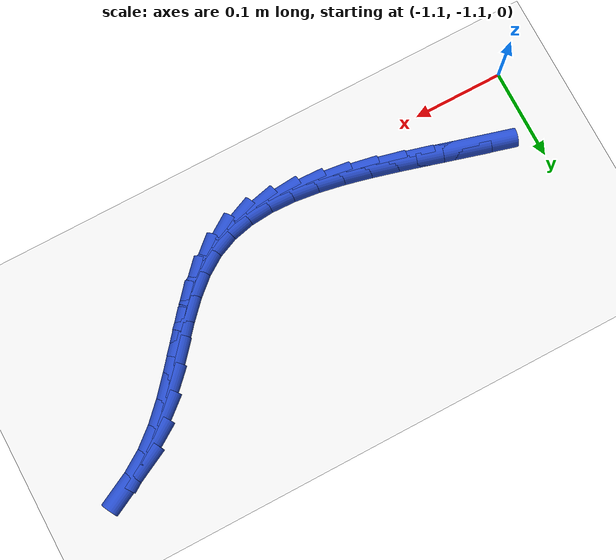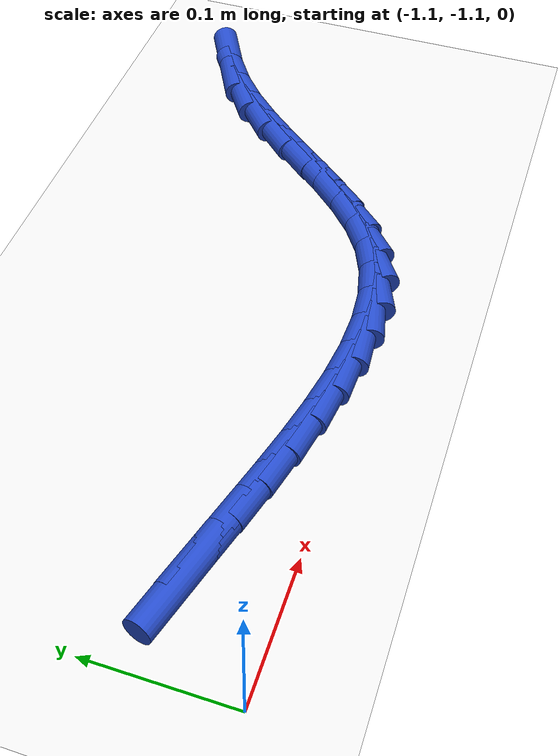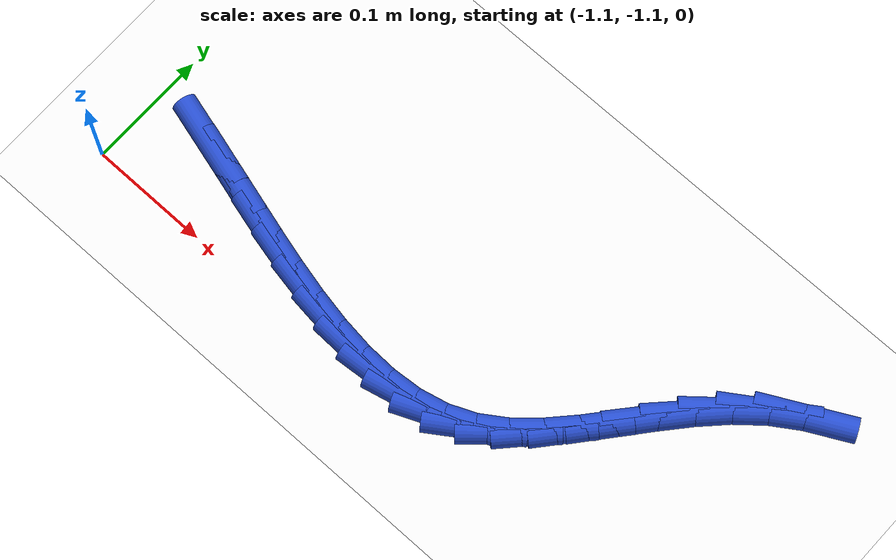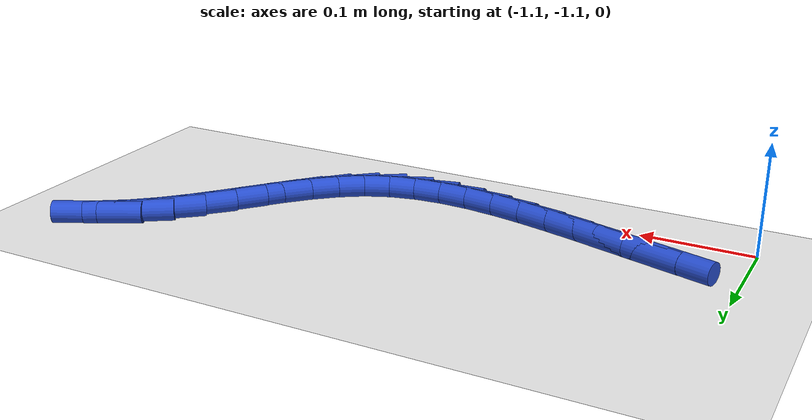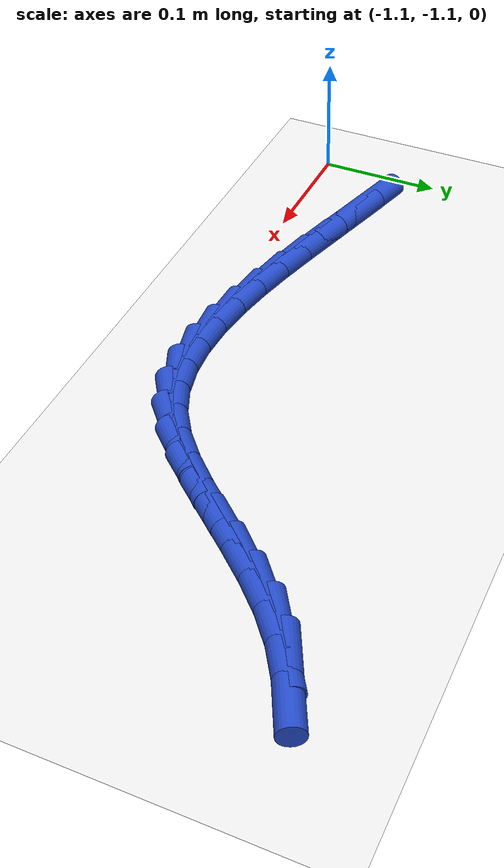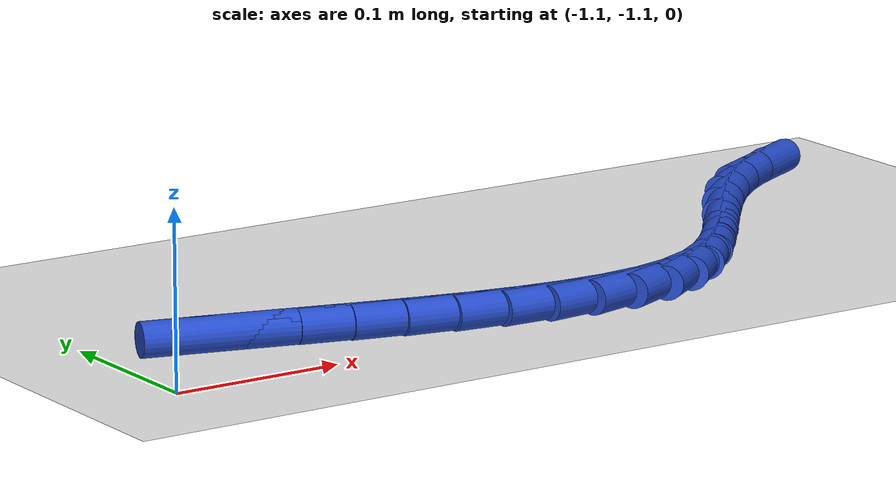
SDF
<sdf version="1.6">
 <world name="default">
  <model name="ground_plane">
   <static>1</static>
   <link name="link">
    <collision name="collision">
     <geometry><plane><normal>0 0 1</normal><size>100 100</size></plane></geometry>
     <surface><friction><ode><mu>100</mu><mu2>50</mu2></ode></friction></surface>
    </collision>
    <visual name="visual">
     <cast_shadows>0</cast_shadows>
     <geometry><plane><normal>0 0 1</normal><size>100 100</size></plane></geometry>
     <material>
      <script><uri>file://media/materials/scripts/gazebo.material</uri><name>Gazebo/WhiteGlow</name></script>
     </material>
    </visual>
   </link>
  </model>
  <model name="line">
   <link name="link_188">
    <pose>-1.041541924193494 -1.0399817547111048 0.01 0 1.57 -0.2705657940973723</pose>
    <collision name="collision">
     <geometry><cylinder><radius>0.01</radius><length>0.08</length></cylinder></geometry>
    </collision>
    <visual name="visual">
     <material>
      <script><name>Gazebo/Blue</name><uri>file://media/materials/scripts/gazebo.material</uri></script>
     </material>
     <geometry><cylinder><radius>0.01</radius><length>0.08</length></cylinder></geometry>
    </visual>
   </link>
   <link name="link_189">
    <pose>-1.0139028569669695 -1.047647929888889 0.01 0 1.57 -0.2769690448395777</pose>
    <collision name="collision">
     <geometry><cylinder><radius>0.01</radius><length>0.08</length></cylinder></geometry>
    </collision>
    <visual name="visual">
     <material>
      <script><name>Gazebo/Blue</name><uri>file://media/materials/scripts/gazebo.material</uri></script>
     </material>
     <geometry><cylinder><radius>0.01</radius><length>0.08</length></cylinder></geometry>
    </visual>
   </link>
   <link name="link_190">
    <pose>-0.9857574932107378 -1.0556489699478517 0.01 0 1.57 -0.27583504324476055</pose>
    <collision name="collision">
     <geometry><cylinder><radius>0.01</radius><length>0.08</length></cylinder></geometry>
    </collision>
    <visual name="visual">
     <material>
      <script><name>Gazebo/Blue</name><uri>file://media/materials/scripts/gazebo.material</uri></script>
     </material>
     <geometry><cylinder><radius>0.01</radius><length>0.08</length></cylinder></geometry>
    </visual>
   </link>
   <link name="link_191">
    <pose>-0.9571374970677071 -1.063749869796378 0.01 0 1.57 -0.26108370045343554</pose>
    <collision name="collision">
     <geometry><cylinder><radius>0.01</radius><length>0.08</length></cylinder></geometry>
    </collision>
    <visual name="visual">
     <material>
      <script><name>Gazebo/Blue</name><uri>file://media/materials/scripts/gazebo.material</uri></script>
     </material>
     <geometry><cylinder><radius>0.01</radius><length>0.08</length></cylinder></geometry>
    </visual>
   </link>
   <link name="link_192">
    <pose>-0.9282945931386143 -1.0714561822834658 0.01 0 1.57 -0.23153074445791957</pose>
    <collision name="collision">
     <geometry><cylinder><radius>0.01</radius><length>0.08</length></cylinder></geometry>
    </collision>
    <visual name="visual">
     <material>
      <script><name>Gazebo/Blue</name><uri>file://media/materials/scripts/gazebo.material</uri></script>
     </material>
     <geometry><cylinder><radius>0.01</radius><length>0.08</length></cylinder></geometry>
    </visual>
   </link>
   <link name="link_193">
    <pose>-0.89950606681987 -1.0782433251509913 0.01 0 1.57 -0.18561032090069926</pose>
    <collision name="collision">
     <geometry><cylinder><radius>0.01</radius><length>0.08</length></cylinder></geometry>
    </collision>
    <visual name="visual">
     <material>
      <script><name>Gazebo/Blue</name><uri>file://media/materials/scripts/gazebo.material</uri></script>
     </material>
     <geometry><cylinder><radius>0.01</radius><length>0.08</length></cylinder></geometry>
    </visual>
   </link>
   <link name="link_194">
    <pose>-0.8710492035078861 -1.0835867161408332 0.01 0 1.57 -0.12060781469627473</pose>
    <collision name="collision">
     <geometry><cylinder><radius>0.01</radius><length>0.08</length></cylinder></geometry>
    </collision>
    <visual name="visual">
     <material>
      <script><name>Gazebo/Blue</name><uri>file://media/materials/scripts/gazebo.material</uri></script>
     </material>
     <geometry><cylinder><radius>0.01</radius><length>0.08</length></cylinder></geometry>
    </visual>
   </link>
   <link name="link_195">
    <pose>-0.8432012885990737 -1.0869617729948682 0.01 0 1.57 -0.03270663595299678</pose>
    <collision name="collision">
     <geometry><cylinder><radius>0.01</radius><length>0.08</length></cylinder></geometry>
    </collision>
    <visual name="visual">
     <material>
      <script><name>Gazebo/Blue</name><uri>file://media/materials/scripts/gazebo.material</uri></script>
     </material>
     <geometry><cylinder><radius>0.01</radius><length>0.08</length></cylinder></geometry>
    </visual>
   </link>
   <link name="link_196">
    <pose>-0.8162396074898443 -1.0878439134549738 0.01 0 1.57 0.08258346425000583</pose>
    <collision name="collision">
     <geometry><cylinder><radius>0.01</radius><length>0.08</length></cylinder></geometry>
    </collision>
    <visual name="visual">
     <material>
      <script><name>Gazebo/Blue</name><uri>file://media/materials/scripts/gazebo.material</uri></script>
     </material>
     <geometry><cylinder><radius>0.01</radius><length>0.08</length></cylinder></geometry>
    </visual>
   </link>
   <link name="link_197">
    <pose>-0.7904414455766093 -1.0857085552630277 0.01 0 1.57 0.22900047735135717</pose>
    <collision name="collision">
     <geometry><cylinder><radius>0.01</radius><length>0.08</length></cylinder></geometry>
    </collision>
    <visual name="visual">
     <material>
      <script><name>Gazebo/Blue</name><uri>file://media/materials/scripts/gazebo.material</uri></script>
     </material>
     <geometry><cylinder><radius>0.01</radius><length>0.08</length></cylinder></geometry>
    </visual>
   </link>
   <link name="link_198">
    <pose>-0.7660840882557801 -1.080031116160907 0.01 0 1.57 0.4063855105874163</pose>
    <collision name="collision">
     <geometry><cylinder><radius>0.01</radius><length>0.08</length></cylinder></geometry>
    </collision>
    <visual name="visual">
     <material>
      <script><name>Gazebo/Blue</name><uri>file://media/materials/scripts/gazebo.material</uri></script>
     </material>
     <geometry><cylinder><radius>0.01</radius><length>0.08</length></cylinder></geometry>
    </visual>
   </link>
   <link name="link_199">
    <pose>-0.743444190758155 -1.0702882480846887 0.01 0 1.57 0.5895419995593538</pose>
    <collision name="collision">
     <geometry><cylinder><radius>0.01</radius><length>0.08</length></cylinder></geometry>
    </collision>
    <visual name="visual">
     <material>
      <script><name>Gazebo/Blue</name><uri>file://media/materials/scripts/gazebo.material</uri></script>
     </material>
     <geometry><cylinder><radius>0.01</radius><length>0.08</length></cylinder></geometry>
    </visual>
   </link>
   <link name="link_200">
    <pose>-0.7225997966165476 -1.0563455886602169 0.01 0 1.57 0.727964525806793</pose>
    <collision name="collision">
     <geometry><cylinder><radius>0.01</radius><length>0.08</length></cylinder></geometry>
    </collision>
    <visual name="visual">
     <material>
      <script><name>Gazebo/Blue</name><uri>file://media/materials/scripts/gazebo.material</uri></script>
     </material>
     <geometry><cylinder><radius>0.01</radius><length>0.08</length></cylinder></geometry>
    </visual>
   </link>
   <link name="link_201">
    <pose>-0.703148602698082 -1.0390095457749862 0.01 0 1.57 0.8180662056567448</pose>
    <collision name="collision">
     <geometry><cylinder><radius>0.01</radius><length>0.08</length></cylinder></geometry>
    </collision>
    <visual name="visual">
     <material>
      <script><name>Gazebo/Blue</name><uri>file://media/materials/scripts/gazebo.material</uri></script>
     </material>
     <geometry><cylinder><radius>0.01</radius><length>0.08</length></cylinder></geometry>
    </visual>
   </link>
   <link name="link_202">
    <pose>-0.6846171226010217 -1.0192259414256228 0.01 0 1.57 0.8665011169613739</pose>
    <collision name="collision">
     <geometry><cylinder><radius>0.01</radius><length>0.08</length></cylinder></geometry>
    </collision>
    <visual name="visual">
     <material>
      <script><name>Gazebo/Blue</name><uri>file://media/materials/scripts/gazebo.material</uri></script>
     </material>
     <geometry><cylinder><radius>0.01</radius><length>0.08</length></cylinder></geometry>
    </visual>
   </link>
   <link name="link_203">
    <pose>-0.6665318699236303 -0.9979405976087532 0.01 0 1.57 0.8784552130111132</pose>
    <collision name="collision">
     <geometry><cylinder><radius>0.01</radius><length>0.08</length></cylinder></geometry>
    </collision>
    <visual name="visual">
     <material>
      <script><name>Gazebo/Blue</name><uri>file://media/materials/scripts/gazebo.material</uri></script>
     </material>
     <geometry><cylinder><radius>0.01</radius><length>0.08</length></cylinder></geometry>
    </visual>
   </link>
   <link name="link_204">
    <pose>-0.6484193582641712 -0.9760993363210041 0.01 0 1.57 0.8561180947052759</pose>
    <collision name="collision">
     <geometry><cylinder><radius>0.01</radius><length>0.08</length></cylinder></geometry>
    </collision>
    <visual name="visual">
     <material>
      <script><name>Gazebo/Blue</name><uri>file://media/materials/scripts/gazebo.material</uri></script>
     </material>
     <geometry><cylinder><radius>0.01</radius><length>0.08</length></cylinder></geometry>
    </visual>
   </link>
   <link name="link_205">
    <pose>-0.6298061012209075 -0.9546479795590014 0.01 0 1.57 0.798699643858873</pose>
    <collision name="collision">
     <geometry><cylinder><radius>0.01</radius><length>0.08</length></cylinder></geometry>
    </collision>
    <visual name="visual">
     <material>
      <script><name>Gazebo/Blue</name><uri>file://media/materials/scripts/gazebo.material</uri></script>
     </material>
     <geometry><cylinder><radius>0.01</radius><length>0.08</length></cylinder></geometry>
    </visual>
   </link>
   <link name="link_206">
    <pose>-0.6102186123921031 -0.9345323493193719 0.01 0 1.57 0.7032434911033106</pose>
    <collision name="collision">
     <geometry><cylinder><radius>0.01</radius><length>0.08</length></cylinder></geometry>
    </collision>
    <visual name="visual">
     <material>
      <script><name>Gazebo/Blue</name><uri>file://media/materials/scripts/gazebo.material</uri></script>
     </material>
     <geometry><cylinder><radius>0.01</radius><length>0.08</length></cylinder></geometry>
    </visual>
   </link>
   <link name="link_207">
    <pose>-0.5891836245529901 -0.91669787328966 0.01 0 1.57 0.5812017434211532</pose>
    <collision name="collision">
     <geometry><cylinder><radius>0.01</radius><length>0.08</length></cylinder></geometry>
    </collision>
    <visual name="visual">
     <material>
      <script><name>Gazebo/Blue</name><uri>file://media/materials/scripts/gazebo.material</uri></script>
     </material>
     <geometry><cylinder><radius>0.01</radius><length>0.08</length></cylinder></geometry>
    </visual>
   </link>
   <link name="link_208">
    <pose>-0.5664198347892907 -0.9017446268543785 0.01 0 1.57 0.4746361243326116</pose>
    <collision name="collision">
     <geometry><cylinder><radius>0.01</radius><length>0.08</length></cylinder></geometry>
    </collision>
    <visual name="visual">
     <material>
      <script><name>Gazebo/Blue</name><uri>file://media/materials/scripts/gazebo.material</uri></script>
     </material>
     <geometry><cylinder><radius>0.01</radius><length>0.08</length></cylinder></geometry>
    </visual>
   </link>
  </model>
 </world>
</sdf>
